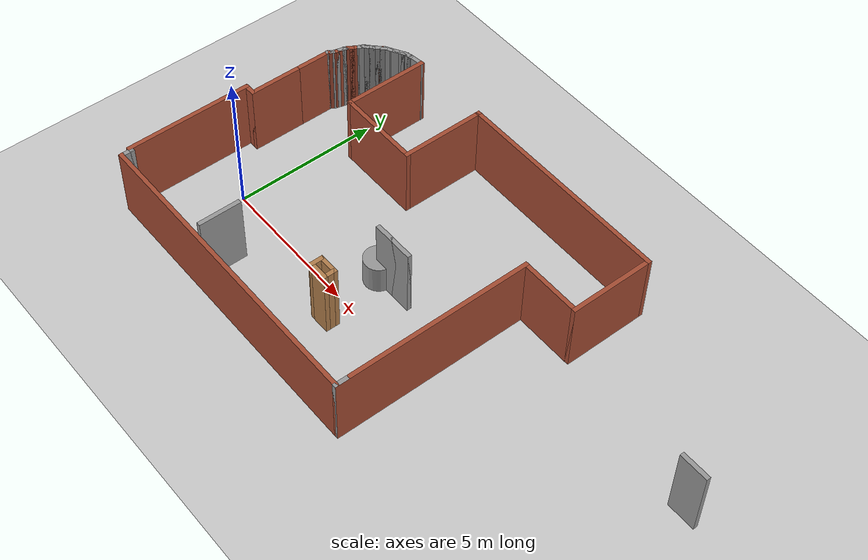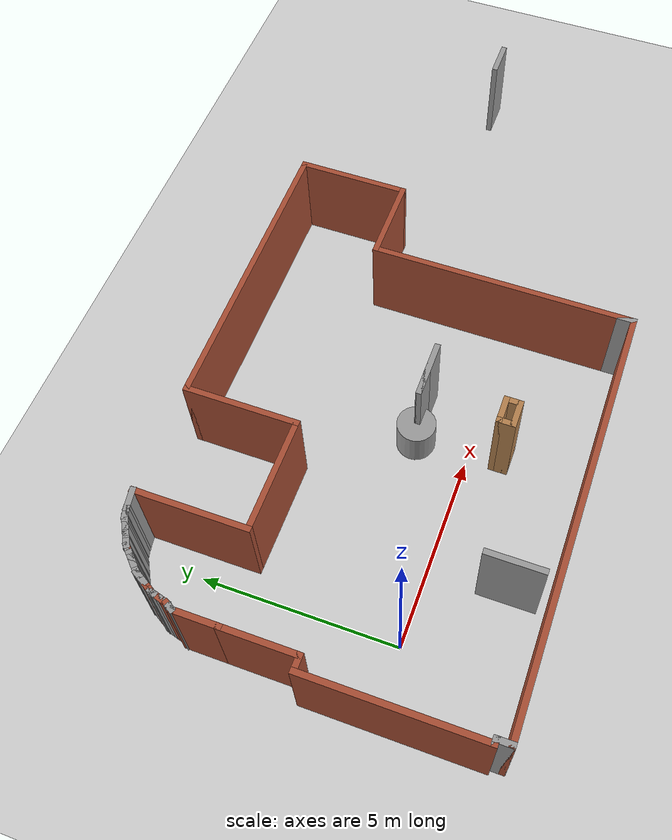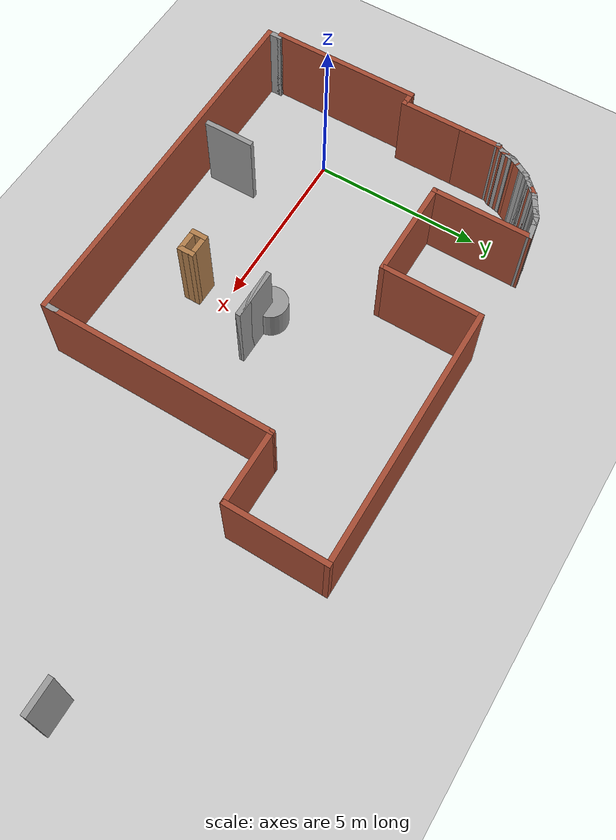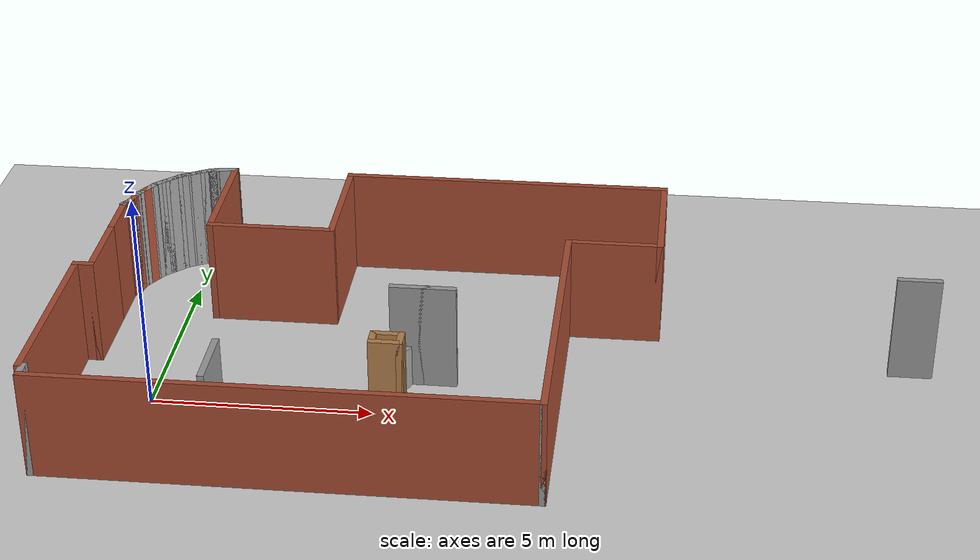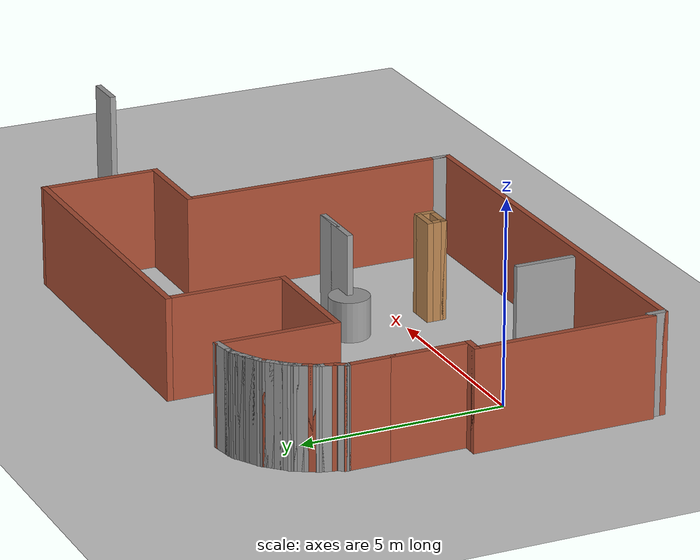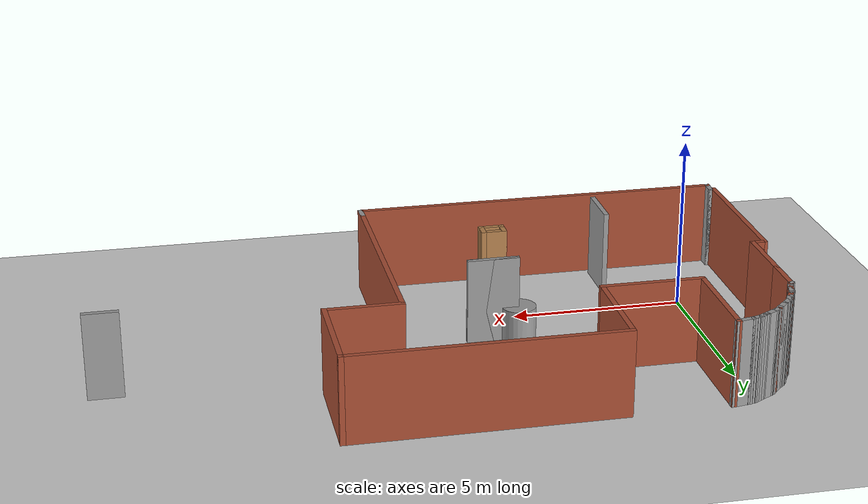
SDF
<sdf version="1.7">
 <world name="default">
  <light name="sun" type="directional">
   <pose>0 0 10 0 -0 0</pose>
   <diffuse>0.8 0.8 0.8 1</diffuse>
   <specular>0.2 0.2 0.2 1</specular>
   <attenuation>
    <range>1000</range>
    <constant>0.9</constant>
    <linear>0.01</linear>
    <quadratic>0.001</quadratic>
   </attenuation>
   <direction>-0.5 0.1 -0.9</direction>
   <spot><inner_angle>0</inner_angle><outer_angle>0</outer_angle><falloff>0</falloff></spot>
  </light>
  <model name="ground_plane">
   <static>1</static>
   <link name="link">
    <collision name="collision">
     <geometry><plane><normal>0 0 1</normal><size>100 100</size></plane></geometry>
     <surface>
      <contact><collide_bitmask>65535</collide_bitmask></contact>
      <friction><ode><mu>100</mu><mu2>50</mu2></ode></friction>
     </surface>
    </collision>
    <visual name="visual">
     <cast_shadows>0</cast_shadows>
     <geometry><plane><normal>0 0 1</normal><size>100 100</size></plane></geometry>
     <material>
      <script><uri>file://media/materials/scripts/gazebo.material</uri><name>Gazebo/Grey</name></script>
     </material>
    </visual>
   </link>
  </model>
  <gravity>0 0 -9.8</gravity>
  <magnetic_field>6e-06 2.3e-05 -4.2e-05</magnetic_field>
  <atmosphere type="adiabatic"/>
  <physics type="ode">
   <max_step_size>0.001</max_step_size>
   <real_time_factor>1</real_time_factor>
   <real_time_update_rate>1000</real_time_update_rate>
  </physics>
  <scene><ambient>0.4 0.4 0.4 1</ambient><background>0.7 0.7 0.7 1</background><shadows>1</shadows></scene>
  <spherical_coordinates>
   <surface_model>EARTH_WGS84</surface_model>
   <latitude_deg>0</latitude_deg>
   <longitude_deg>0</longitude_deg>
   <elevation>0</elevation>
   <heading_deg>0</heading_deg>
  </spherical_coordinates>
  <model name="mapav5">
   <pose>7.68804 1.83557 0 0 -0 0</pose>
   <link name="Wall_0">
    <collision name="Wall_0_Collision">
     <geometry><box><size>11 0.15 2.5</size></box></geometry>
     <pose>0 0 1.25 0 -0 0</pose>
    </collision>
    <visual name="Wall_0_Visual">
     <pose>0 0 1.25 0 -0 0</pose>
     <geometry><box><size>11 0.15 2.5</size></box></geometry>
     <material>
      <script><uri>file://media/materials/scripts/gazebo.material</uri><name>Gazebo/Bricks</name></script>
      <ambient>1 1 1 1</ambient>
     </material>
     <meta><layer>0</layer></meta>
    </visual>
    <pose>-4.10303 -4.85557 0 0 -0 0</pose>
   </link>
   <link name="Wall_1">
    <collision name="Wall_1_Collision">
     <geometry><box><size>7 0.15 2.5</size></box></geometry>
     <pose>0 0 1.25 0 -0 0</pose>
    </collision>
    <visual name="Wall_1_Visual">
     <pose>0 0 1.25 0 -0 0</pose>
     <geometry><box><size>7 0.15 2.5</size></box></geometry>
     <material>
      <script><uri>file://media/materials/scripts/gazebo.material</uri><name>Gazebo/Bricks</name></script>
      <ambient>1 1 1 1</ambient>
     </material>
     <meta><layer>0</layer></meta>
    </visual>
    <pose>1.32197 -1.43057 0 0 -0 1.5708</pose>
   </link>
   <link name="Wall_10">
    <collision name="Wall_10_Collision">
     <geometry><box><size>0.5 0.15 2.5</size></box></geometry>
     <pose>0 0 1.25 0 -0 0</pose>
    </collision>
    <visual name="Wall_10_Visual">
     <pose>0 0 1.25 0 -0 0</pose>
     <geometry><box><size>0.5 0.15 2.5</size></box></geometry>
     <material>
      <script><uri>file://media/materials/scripts/gazebo.material</uri><name>Gazebo/Grey</name></script>
      <ambient>1 1 1 1</ambient>
     </material>
     <meta><layer>0</layer></meta>
    </visual>
    <pose>-9.52803 -4.68057 0 0 -0 1.5708</pose>
   </link>
   <link name="Wall_13">
    <collision name="Wall_13_Collision">
     <geometry><box><size>0.25 0.15 2.5</size></box></geometry>
     <pose>0 0 1.25 0 -0 0</pose>
    </collision>
    <visual name="Wall_13_Visual">
     <pose>0 0 1.25 0 -0 0</pose>
     <geometry><box><size>0.25 0.15 2.5</size></box></geometry>
     <material>
      <script><uri>file://media/materials/scripts/gazebo.material</uri><name>Gazebo/Grey</name></script>
      <ambient>1 1 1 1</ambient>
     </material>
     <meta><layer>0</layer></meta>
    </visual>
    <pose>-9.57803 -4.50557 0 0 -0 3.14159</pose>
   </link>
   <link name="Wall_14">
    <collision name="Wall_14_Collision">
     <geometry><box><size>4.5 0.15 2.5</size></box></geometry>
     <pose>0 0 1.25 0 -0 0</pose>
    </collision>
    <visual name="Wall_14_Visual">
     <pose>0 0 1.25 0 -0 0</pose>
     <geometry><box><size>4.5 0.15 2.5</size></box></geometry>
     <material>
      <script><uri>file://media/materials/scripts/gazebo.material</uri><name>Gazebo/Bricks</name></script>
      <ambient>1 1 1 1</ambient>
     </material>
     <meta><layer>0</layer></meta>
    </visual>
    <pose>-9.62804 -2.33057 0 0 -0 1.5708</pose>
   </link>
   <link name="Wall_15">
    <collision name="Wall_15_Collision">
     <geometry><box><size>0.5 0.15 2.5</size></box></geometry>
     <pose>0 0 1.25 0 -0 0</pose>
    </collision>
    <visual name="Wall_15_Visual">
     <pose>0 0 1.25 0 -0 0</pose>
     <geometry><box><size>0.5 0.15 2.5</size></box></geometry>
     <material>
      <script><uri>file://media/materials/scripts/gazebo.material</uri><name>Gazebo/Bricks</name></script>
      <ambient>1 1 1 1</ambient>
     </material>
     <meta><layer>0</layer></meta>
    </visual>
    <pose>-9.45303 -0.15557 0 0 -0 0</pose>
   </link>
   <link name="Wall_16">
    <collision name="Wall_16_Collision">
     <geometry><box><size>2 0.15 2.5</size></box></geometry>
     <pose>0 0 1.25 0 -0 0</pose>
    </collision>
    <visual name="Wall_16_Visual">
     <pose>0 0 1.25 0 -0 0</pose>
     <geometry><box><size>2 0.15 2.5</size></box></geometry>
     <material>
      <script><uri>file://media/materials/scripts/gazebo.material</uri><name>Gazebo/Bricks</name></script>
      <ambient>1 1 1 1</ambient>
     </material>
     <meta><layer>0</layer></meta>
    </visual>
    <pose>-9.27803 0.769431 0 0 -0 1.5708</pose>
   </link>
   <link name="Wall_2">
    <collision name="Wall_2_Collision">
     <geometry><box><size>2.25 0.15 2.5</size></box></geometry>
     <pose>0 0 1.25 0 -0 0</pose>
    </collision>
    <visual name="Wall_2_Visual">
     <pose>0 0 1.25 0 -0 0</pose>
     <geometry><box><size>2.25 0.15 2.5</size></box></geometry>
     <material>
      <script><uri>file://media/materials/scripts/gazebo.material</uri><name>Gazebo/Bricks</name></script>
      <ambient>1 1 1 1</ambient>
     </material>
     <meta><layer>0</layer></meta>
    </visual>
    <pose>2.37197 1.99443 0 0 -0 0</pose>
   </link>
   <link name="Wall_24">
    <collision name="Wall_24_Collision">
     <geometry><box><size>1.25 0.15 2.5</size></box></geometry>
     <pose>0 0 1.25 0 -0 0</pose>
    </collision>
    <visual name="Wall_24_Visual">
     <pose>0 0 1.25 0 -0 0</pose>
     <geometry><box><size>1.25 0.15 2.5</size></box></geometry>
     <material>
      <script><uri>file://media/materials/scripts/gazebo.material</uri><name>Gazebo/Bricks</name></script>
      <ambient>1 1 1 1</ambient>
     </material>
     <meta><layer>0</layer></meta>
    </visual>
    <pose>-9.27803 2.24443 0 0 -0 1.5708</pose>
   </link>
   <link name="Wall_25">
    <collision name="Wall_25_Collision">
     <geometry><box><size>0.15 0.15 2.5</size></box></geometry>
     <pose>0 0 1.25 0 -0 0</pose>
    </collision>
    <visual name="Wall_25_Visual">
     <pose>0 0 1.25 0 -0 0</pose>
     <geometry><box><size>0.15 0.15 2.5</size></box></geometry>
     <material>
      <script><uri>file://media/materials/scripts/gazebo.material</uri><name>Gazebo/Grey</name></script>
      <ambient>1 1 1 1</ambient>
     </material>
     <meta><layer>0</layer></meta>
    </visual>
    <pose>-9.27803 2.79443 0 0 -0 0</pose>
   </link>
   <link name="Wall_26">
    <collision name="Wall_26_Collision">
     <geometry><box><size>0.25 0.15 2.5</size></box></geometry>
     <pose>0 0 1.25 0 -0 0</pose>
    </collision>
    <visual name="Wall_26_Visual">
     <pose>0 0 1.25 0 -0 0</pose>
     <geometry><box><size>0.25 0.15 2.5</size></box></geometry>
     <material>
      <script><uri>file://media/materials/scripts/gazebo.material</uri><name>Gazebo/Grey</name></script>
      <ambient>1 1 1 1</ambient>
     </material>
     <meta><layer>0</layer></meta>
    </visual>
    <pose>-9.25304 2.83773 0 0 -0 1.0472</pose>
   </link>
   <link name="Wall_27">
    <collision name="Wall_27_Collision">
     <geometry><box><size>0.25 0.15 2.5</size></box></geometry>
     <pose>0 0 1.25 0 -0 0</pose>
    </collision>
    <visual name="Wall_27_Visual">
     <pose>0 0 1.25 0 -0 0</pose>
     <geometry><box><size>0.25 0.15 2.5</size></box></geometry>
     <material>
      <script><uri>file://media/materials/scripts/gazebo.material</uri><name>Gazebo/Bricks</name></script>
      <ambient>1 1 1 1</ambient>
     </material>
     <meta><layer>0</layer></meta>
    </visual>
    <pose>-9.20303 2.92433 0 0 -0 1.0472</pose>
   </link>
   <link name="Wall_28">
    <collision name="Wall_28_Collision">
     <geometry><box><size>0.25 0.15 2.5</size></box></geometry>
     <pose>0 0 1.25 0 -0 0</pose>
    </collision>
    <visual name="Wall_28_Visual">
     <pose>0 0 1.25 0 -0 0</pose>
     <geometry><box><size>0.25 0.15 2.5</size></box></geometry>
     <material>
      <script><uri>file://media/materials/scripts/gazebo.material</uri><name>Gazebo/Grey</name></script>
      <ambient>1 1 1 1</ambient>
     </material>
     <meta><layer>0</layer></meta>
    </visual>
    <pose>-9.16509 3.01593 0 0 -0 1.309</pose>
   </link>
   <link name="Wall_29">
    <collision name="Wall_29_Collision">
     <geometry><box><size>0.25 0.15 2.5</size></box></geometry>
     <pose>0 0 1.25 0 -0 0</pose>
    </collision>
    <visual name="Wall_29_Visual">
     <pose>0 0 1.25 0 -0 0</pose>
     <geometry><box><size>0.25 0.15 2.5</size></box></geometry>
     <material>
      <script><uri>file://media/materials/scripts/gazebo.material</uri><name>Gazebo/Bricks</name></script>
      <ambient>1 1 1 1</ambient>
     </material>
     <meta><layer>0</layer></meta>
    </visual>
    <pose>-9.13921 3.11252 0 0 -0 1.309</pose>
   </link>
   <link name="Wall_3">
    <collision name="Wall_3_Collision">
     <geometry><box><size>3 0.15 2.5</size></box></geometry>
     <pose>0 0 1.25 0 -0 0</pose>
    </collision>
    <visual name="Wall_3_Visual">
     <pose>0 0 1.25 0 -0 0</pose>
     <geometry><box><size>3 0.15 2.5</size></box></geometry>
     <material>
      <script><uri>file://media/materials/scripts/gazebo.material</uri><name>Gazebo/Bricks</name></script>
      <ambient>1 1 1 1</ambient>
     </material>
     <meta><layer>0</layer></meta>
    </visual>
    <pose>3.42197 3.41943 0 0 -0 1.5708</pose>
   </link>
   <link name="Wall_30">
    <collision name="Wall_30_Collision">
     <geometry><box><size>0.25 0.15 2.5</size></box></geometry>
     <pose>0 0 1.25 0 -0 0</pose>
    </collision>
    <visual name="Wall_30_Visual">
     <pose>0 0 1.25 0 -0 0</pose>
     <geometry><box><size>0.25 0.15 2.5</size></box></geometry>
     <material>
      <script><uri>file://media/materials/scripts/gazebo.material</uri><name>Gazebo/Grey</name></script>
      <ambient>1 1 1 1</ambient>
     </material>
     <meta><layer>0</layer></meta>
    </visual>
    <pose>-9.11333 3.20912 0 0 -0 1.309</pose>
   </link>
   <link name="Wall_31">
    <collision name="Wall_31_Collision">
     <geometry><box><size>0.25 0.15 2.5</size></box></geometry>
     <pose>0 0 1.25 0 -0 0</pose>
    </collision>
    <visual name="Wall_31_Visual">
     <pose>0 0 1.25 0 -0 0</pose>
     <geometry><box><size>0.25 0.15 2.5</size></box></geometry>
     <material>
      <script><uri>file://media/materials/scripts/gazebo.material</uri><name>Gazebo/Grey</name></script>
      <ambient>1 1 1 1</ambient>
     </material>
     <meta><layer>0</layer></meta>
    </visual>
    <pose>-9.08745 3.30571 0 0 -0 1.309</pose>
   </link>
   <link name="Wall_32">
    <collision name="Wall_32_Collision">
     <geometry><box><size>0.25 0.15 2.5</size></box></geometry>
     <pose>0 0 1.25 0 -0 0</pose>
    </collision>
    <visual name="Wall_32_Visual">
     <pose>0 0 1.25 0 -0 0</pose>
     <geometry><box><size>0.25 0.15 2.5</size></box></geometry>
     <material>
      <script><uri>file://media/materials/scripts/gazebo.material</uri><name>Gazebo/Grey</name></script>
      <ambient>1 1 1 1</ambient>
     </material>
     <meta><layer>0</layer></meta>
    </visual>
    <pose>-9.04951 3.39731 0 0 -0 1.0472</pose>
   </link>
   <link name="Wall_33">
    <collision name="Wall_33_Collision">
     <geometry><box><size>0.25 0.15 2.5</size></box></geometry>
     <pose>0 0 1.25 0 -0 0</pose>
    </collision>
    <visual name="Wall_33_Visual">
     <pose>0 0 1.25 0 -0 0</pose>
     <geometry><box><size>0.25 0.15 2.5</size></box></geometry>
     <material>
      <script><uri>file://media/materials/scripts/gazebo.material</uri><name>Gazebo/Bricks</name></script>
      <ambient>1 1 1 1</ambient>
     </material>
     <meta><layer>0</layer></meta>
    </visual>
    <pose>-8.99951 3.48391 0 0 -0 1.0472</pose>
   </link>
   <link name="Wall_34">
    <collision name="Wall_34_Collision">
     <geometry><box><size>0.25 0.15 2.5</size></box></geometry>
     <pose>0 0 1.25 0 -0 0</pose>
    </collision>
    <visual name="Wall_34_Visual">
     <pose>0 0 1.25 0 -0 0</pose>
     <geometry><box><size>0.25 0.15 2.5</size></box></geometry>
     <material>
      <script><uri>file://media/materials/scripts/gazebo.material</uri><name>Gazebo/Bricks</name></script>
      <ambient>1 1 1 1</ambient>
     </material>
     <meta><layer>0</layer></meta>
    </visual>
    <pose>-8.94951 3.57051 0 0 -0 1.0472</pose>
   </link>
   <link name="Wall_35">
    <collision name="Wall_35_Collision">
     <geometry><box><size>0.25 0.15 2.5</size></box></geometry>
     <pose>0 0 1.25 0 -0 0</pose>
    </collision>
    <visual name="Wall_35_Visual">
     <pose>0 0 1.25 0 -0 0</pose>
     <geometry><box><size>0.25 0.15 2.5</size></box></geometry>
     <material>
      <script><uri>file://media/materials/scripts/gazebo.material</uri><name>Gazebo/Grey</name></script>
      <ambient>1 1 1 1</ambient>
     </material>
     <meta><layer>0</layer></meta>
    </visual>
    <pose>-8.89951 3.65712 0 0 -0 1.0472</pose>
   </link>
   <link name="Wall_36">
    <collision name="Wall_36_Collision">
     <geometry><box><size>0.25 0.15 2.5</size></box></geometry>
     <pose>0 0 1.25 0 -0 0</pose>
    </collision>
    <visual name="Wall_36_Visual">
     <pose>0 0 1.25 0 -0 0</pose>
     <geometry><box><size>0.25 0.15 2.5</size></box></geometry>
     <material>
      <script><uri>file://media/materials/scripts/gazebo.material</uri><name>Gazebo/Grey</name></script>
      <ambient>1 1 1 1</ambient>
     </material>
     <meta><layer>0</layer></meta>
    </visual>
    <pose>-8.84951 3.74372 0 0 -0 1.0472</pose>
   </link>
   <link name="Wall_37">
    <collision name="Wall_37_Collision">
     <geometry><box><size>0.25 0.15 2.5</size></box></geometry>
     <pose>0 0 1.25 0 -0 0</pose>
    </collision>
    <visual name="Wall_37_Visual">
     <pose>0 0 1.25 0 -0 0</pose>
     <geometry><box><size>0.25 0.15 2.5</size></box></geometry>
     <material>
      <script><uri>file://media/materials/scripts/gazebo.material</uri><name>Gazebo/Grey</name></script>
      <ambient>1 1 1 1</ambient>
     </material>
     <meta><layer>0</layer></meta>
    </visual>
    <pose>-8.79951 3.83032 0 0 -0 1.0472</pose>
   </link>
   <link name="Wall_38">
    <collision name="Wall_38_Collision">
     <geometry><box><size>0.25 0.15 2.5</size></box></geometry>
     <pose>0 0 1.25 0 -0 0</pose>
    </collision>
    <visual name="Wall_38_Visual">
     <pose>0 0 1.25 0 -0 0</pose>
     <geometry><box><size>0.25 0.15 2.5</size></box></geometry>
     <material>
      <script><uri>file://media/materials/scripts/gazebo.material</uri><name>Gazebo/Grey</name></script>
      <ambient>1 1 1 1</ambient>
     </material>
     <meta><layer>0</layer></meta>
    </visual>
    <pose>-8.73915 3.90898 0 0 -0 0.785398</pose>
   </link>
   <link name="Wall_39">
    <collision name="Wall_39_Collision">
     <geometry><box><size>0.25 0.15 2.5</size></box></geometry>
     <pose>0 0 1.25 0 -0 0</pose>
    </collision>
    <visual name="Wall_39_Visual">
     <pose>0 0 1.25 0 -0 0</pose>
     <geometry><box><size>0.25 0.15 2.5</size></box></geometry>
     <material>
      <script><uri>file://media/materials/scripts/gazebo.material</uri><name>Gazebo/Grey</name></script>
      <ambient>1 1 1 1</ambient>
     </material>
     <meta><layer>0</layer></meta>
    </visual>
    <pose>-8.66844 3.97969 0 0 -0 0.785398</pose>
   </link>
   <link name="Wall_4">
    <collision name="Wall_4_Collision">
     <geometry><box><size>7.75 0.15 2.5</size></box></geometry>
     <pose>0 0 1.25 0 -0 0</pose>
    </collision>
    <visual name="Wall_4_Visual">
     <pose>0 0 1.25 0 -0 0</pose>
     <geometry><box><size>7.75 0.15 2.5</size></box></geometry>
     <material>
      <script><uri>file://media/materials/scripts/gazebo.material</uri><name>Gazebo/Bricks</name></script>
      <ambient>1 1 1 1</ambient>
     </material>
     <meta><layer>0</layer></meta>
    </visual>
    <pose>-0.378035 4.84443 0 0 -0 3.14159</pose>
   </link>
   <link name="Wall_40">
    <collision name="Wall_40_Collision">
     <geometry><box><size>0.25 0.15 2.5</size></box></geometry>
     <pose>0 0 1.25 0 -0 0</pose>
    </collision>
    <visual name="Wall_40_Visual">
     <pose>0 0 1.25 0 -0 0</pose>
     <geometry><box><size>0.25 0.15 2.5</size></box></geometry>
     <material>
      <script><uri>file://media/materials/scripts/gazebo.material</uri><name>Gazebo/Grey</name></script>
      <ambient>1 1 1 1</ambient>
     </material>
     <meta><layer>0</layer></meta>
    </visual>
    <pose>-8.59773 4.0504 0 0 -0 0.785398</pose>
   </link>
   <link name="Wall_41">
    <collision name="Wall_41_Collision">
     <geometry><box><size>0.25 0.15 2.5</size></box></geometry>
     <pose>0 0 1.25 0 -0 0</pose>
    </collision>
    <visual name="Wall_41_Visual">
     <pose>0 0 1.25 0 -0 0</pose>
     <geometry><box><size>0.25 0.15 2.5</size></box></geometry>
     <material>
      <script><uri>file://media/materials/scripts/gazebo.material</uri><name>Gazebo/Grey</name></script>
      <ambient>1 1 1 1</ambient>
     </material>
     <meta><layer>0</layer></meta>
    </visual>
    <pose>-8.52702 4.12111 0 0 -0 0.785398</pose>
   </link>
   <link name="Wall_42">
    <collision name="Wall_42_Collision">
     <geometry><box><size>0.25 0.15 2.5</size></box></geometry>
     <pose>0 0 1.25 0 -0 0</pose>
    </collision>
    <visual name="Wall_42_Visual">
     <pose>0 0 1.25 0 -0 0</pose>
     <geometry><box><size>0.25 0.15 2.5</size></box></geometry>
     <material>
      <script><uri>file://media/materials/scripts/gazebo.material</uri><name>Gazebo/Grey</name></script>
      <ambient>1 1 1 1</ambient>
     </material>
     <meta><layer>0</layer></meta>
    </visual>
    <pose>-8.45631 4.19182 0 0 -0 0.785398</pose>
   </link>
   <link name="Wall_43">
    <collision name="Wall_43_Collision">
     <geometry><box><size>0.25 0.15 2.5</size></box></geometry>
     <pose>0 0 1.25 0 -0 0</pose>
    </collision>
    <visual name="Wall_43_Visual">
     <pose>0 0 1.25 0 -0 0</pose>
     <geometry><box><size>0.25 0.15 2.5</size></box></geometry>
     <material>
      <script><uri>file://media/materials/scripts/gazebo.material</uri><name>Gazebo/Bricks</name></script>
      <ambient>1 1 1 1</ambient>
     </material>
     <meta><layer>0</layer></meta>
    </visual>
    <pose>-8.3856 4.26253 0 0 -0 0.785398</pose>
   </link>
   <link name="Wall_44">
    <collision name="Wall_44_Collision">
     <geometry><box><size>0.25 0.15 2.5</size></box></geometry>
     <pose>0 0 1.25 0 -0 0</pose>
    </collision>
    <visual name="Wall_44_Visual">
     <pose>0 0 1.25 0 -0 0</pose>
     <geometry><box><size>0.25 0.15 2.5</size></box></geometry>
     <material>
      <script><uri>file://media/materials/scripts/gazebo.material</uri><name>Gazebo/Grey</name></script>
      <ambient>1 1 1 1</ambient>
     </material>
     <meta><layer>0</layer></meta>
    </visual>
    <pose>-8.31489 4.33324 0 0 -0 0.785398</pose>
   </link>
   <link name="Wall_45">
    <collision name="Wall_45_Collision">
     <geometry><box><size>0.25 0.15 2.5</size></box></geometry>
     <pose>0 0 1.25 0 -0 0</pose>
    </collision>
    <visual name="Wall_45_Visual">
     <pose>0 0 1.25 0 -0 0</pose>
     <geometry><box><size>0.25 0.15 2.5</size></box></geometry>
     <material>
      <script><uri>file://media/materials/scripts/gazebo.material</uri><name>Gazebo/Grey</name></script>
      <ambient>1 1 1 1</ambient>
     </material>
     <meta><layer>0</layer></meta>
    </visual>
    <pose>-8.23623 4.3936 0 0 -0 0.523599</pose>
   </link>
   <link name="Wall_46">
    <collision name="Wall_46_Collision">
     <geometry><box><size>0.25 0.15 2.5</size></box></geometry>
     <pose>0 0 1.25 0 -0 0</pose>
    </collision>
    <visual name="Wall_46_Visual">
     <pose>0 0 1.25 0 -0 0</pose>
     <geometry><box><size>0.25 0.15 2.5</size></box></geometry>
     <material>
      <script><uri>file://media/materials/scripts/gazebo.material</uri><name>Gazebo/Grey</name></script>
      <ambient>1 1 1 1</ambient>
     </material>
     <meta><layer>0</layer></meta>
    </visual>
    <pose>-8.14963 4.4436 0 0 -0 0.523599</pose>
   </link>
   <link name="Wall_47">
    <collision name="Wall_47_Collision">
     <geometry><box><size>0.25 0.15 2.5</size></box></geometry>
     <pose>0 0 1.25 0 -0 0</pose>
    </collision>
    <visual name="Wall_47_Visual">
     <pose>0 0 1.25 0 -0 0</pose>
     <geometry><box><size>0.25 0.15 2.5</size></box></geometry>
     <material>
      <script><uri>file://media/materials/scripts/gazebo.material</uri><name>Gazebo/Grey</name></script>
      <ambient>1 1 1 1</ambient>
     </material>
     <meta><layer>0</layer></meta>
    </visual>
    <pose>-8.06303 4.4936 0 0 -0 0.523599</pose>
   </link>
   <link name="Wall_48">
    <collision name="Wall_48_Collision">
     <geometry><box><size>0.25 0.15 2.5</size></box></geometry>
     <pose>0 0 1.25 0 -0 0</pose>
    </collision>
    <visual name="Wall_48_Visual">
     <pose>0 0 1.25 0 -0 0</pose>
     <geometry><box><size>0.25 0.15 2.5</size></box></geometry>
     <material>
      <script><uri>file://media/materials/scripts/gazebo.material</uri><name>Gazebo/Grey</name></script>
      <ambient>1 1 1 1</ambient>
     </material>
     <meta><layer>0</layer></meta>
    </visual>
    <pose>-7.97642 4.5436 0 0 -0 0.523599</pose>
   </link>
   <link name="Wall_49">
    <collision name="Wall_49_Collision">
     <geometry><box><size>0.25 0.15 2.5</size></box></geometry>
     <pose>0 0 1.25 0 -0 0</pose>
    </collision>
    <visual name="Wall_49_Visual">
     <pose>0 0 1.25 0 -0 0</pose>
     <geometry><box><size>0.25 0.15 2.5</size></box></geometry>
     <material>
      <script><uri>file://media/materials/scripts/gazebo.material</uri><name>Gazebo/Grey</name></script>
      <ambient>1 1 1 1</ambient>
     </material>
     <meta><layer>0</layer></meta>
    </visual>
    <pose>-7.88982 4.5936 0 0 -0 0.523599</pose>
   </link>
   <link name="Wall_5">
    <collision name="Wall_5_Collision">
     <geometry><box><size>3 0.15 2.5</size></box></geometry>
     <pose>0 0 1.25 0 -0 0</pose>
    </collision>
    <visual name="Wall_5_Visual">
     <pose>0 0 1.25 0 -0 0</pose>
     <geometry><box><size>3 0.15 2.5</size></box></geometry>
     <material>
      <script><uri>file://media/materials/scripts/gazebo.material</uri><name>Gazebo/Bricks</name></script>
      <ambient>1 1 1 1</ambient>
     </material>
     <meta><layer>0</layer></meta>
    </visual>
    <pose>-4.17804 3.41943 0 0 -0 -1.5708</pose>
   </link>
   <link name="Wall_50">
    <collision name="Wall_50_Collision">
     <geometry><box><size>0.25 0.15 2.5</size></box></geometry>
     <pose>0 0 1.25 0 -0 0</pose>
    </collision>
    <visual name="Wall_50_Visual">
     <pose>0 0 1.25 0 -0 0</pose>
     <geometry><box><size>0.25 0.15 2.5</size></box></geometry>
     <material>
      <script><uri>file://media/materials/scripts/gazebo.material</uri><name>Gazebo/Grey</name></script>
      <ambient>1 1 1 1</ambient>
     </material>
     <meta><layer>0</layer></meta>
    </visual>
    <pose>-7.80322 4.6436 0 0 -0 0.523599</pose>
   </link>
   <link name="Wall_51">
    <collision name="Wall_51_Collision">
     <geometry><box><size>0.25 0.15 2.5</size></box></geometry>
     <pose>0 0 1.25 0 -0 0</pose>
    </collision>
    <visual name="Wall_51_Visual">
     <pose>0 0 1.25 0 -0 0</pose>
     <geometry><box><size>0.25 0.15 2.5</size></box></geometry>
     <material>
      <script><uri>file://media/materials/scripts/gazebo.material</uri><name>Gazebo/Grey</name></script>
      <ambient>1 1 1 1</ambient>
     </material>
     <meta><layer>0</layer></meta>
    </visual>
    <pose>-7.71662 4.6936 0 0 -0 0.523599</pose>
   </link>
   <link name="Wall_52">
    <collision name="Wall_52_Collision">
     <geometry><box><size>0.25 0.15 2.5</size></box></geometry>
     <pose>0 0 1.25 0 -0 0</pose>
    </collision>
    <visual name="Wall_52_Visual">
     <pose>0 0 1.25 0 -0 0</pose>
     <geometry><box><size>0.25 0.15 2.5</size></box></geometry>
     <material>
      <script><uri>file://media/materials/scripts/gazebo.material</uri><name>Gazebo/Grey</name></script>
      <ambient>1 1 1 1</ambient>
     </material>
     <meta><layer>0</layer></meta>
    </visual>
    <pose>-7.62502 4.73154 0 0 -0 0.261799</pose>
   </link>
   <link name="Wall_53">
    <collision name="Wall_53_Collision">
     <geometry><box><size>0.25 0.15 2.5</size></box></geometry>
     <pose>0 0 1.25 0 -0 0</pose>
    </collision>
    <visual name="Wall_53_Visual">
     <pose>0 0 1.25 0 -0 0</pose>
     <geometry><box><size>0.25 0.15 2.5</size></box></geometry>
     <material>
      <script><uri>file://media/materials/scripts/gazebo.material</uri><name>Gazebo/Grey</name></script>
      <ambient>1 1 1 1</ambient>
     </material>
     <meta><layer>0</layer></meta>
    </visual>
    <pose>-7.52843 4.75742 0 0 -0 0.261799</pose>
   </link>
   <link name="Wall_54">
    <collision name="Wall_54_Collision">
     <geometry><box><size>0.25 0.15 2.5</size></box></geometry>
     <pose>0 0 1.25 0 -0 0</pose>
    </collision>
    <visual name="Wall_54_Visual">
     <pose>0 0 1.25 0 -0 0</pose>
     <geometry><box><size>0.25 0.15 2.5</size></box></geometry>
     <material>
      <script><uri>file://media/materials/scripts/gazebo.material</uri><name>Gazebo/Grey</name></script>
      <ambient>1 1 1 1</ambient>
     </material>
     <meta><layer>0</layer></meta>
    </visual>
    <pose>-7.52843 4.75742 0 0 -0 -2.87979</pose>
   </link>
   <link name="Wall_55">
    <collision name="Wall_55_Collision">
     <geometry><box><size>0.25 0.15 2.5</size></box></geometry>
     <pose>0 0 1.25 0 -0 0</pose>
    </collision>
    <visual name="Wall_55_Visual">
     <pose>0 0 1.25 0 -0 0</pose>
     <geometry><box><size>0.25 0.15 2.5</size></box></geometry>
     <material>
      <script><uri>file://media/materials/scripts/gazebo.material</uri><name>Gazebo/Grey</name></script>
      <ambient>1 1 1 1</ambient>
     </material>
     <meta><layer>0</layer></meta>
    </visual>
    <pose>-7.52843 4.75742 0 0 -0 0.261799</pose>
   </link>
   <link name="Wall_57">
    <collision name="Wall_57_Collision">
     <geometry><box><size>0.25 0.15 2.5</size></box></geometry>
     <pose>0 0 1.25 0 -0 0</pose>
    </collision>
    <visual name="Wall_57_Visual">
     <pose>0 0 1.25 0 -0 0</pose>
     <geometry><box><size>0.25 0.15 2.5</size></box></geometry>
     <material>
      <script><uri>file://media/materials/scripts/gazebo.material</uri><name>Gazebo/Grey</name></script>
      <ambient>1 1 1 1</ambient>
     </material>
     <meta><layer>0</layer></meta>
    </visual>
    <pose>-7.52843 4.75742 0 0 -0 0.261799</pose>
   </link>
   <link name="Wall_58">
    <collision name="Wall_58_Collision">
     <geometry><box><size>0.15 0.15 2.5</size></box></geometry>
     <pose>0 0 1.25 0 -0 0</pose>
    </collision>
    <visual name="Wall_58_Visual">
     <pose>0 0 1.25 0 -0 0</pose>
     <geometry><box><size>0.15 0.15 2.5</size></box></geometry>
     <material>
      <script><uri>file://media/materials/scripts/gazebo.material</uri><name>Gazebo/Grey</name></script>
      <ambient>1 1 1 1</ambient>
     </material>
     <meta><layer>0</layer></meta>
    </visual>
    <pose>-7.48013 4.77036 0 0 -0 0</pose>
   </link>
   <link name="Wall_59">
    <collision name="Wall_59_Collision">
     <geometry><box><size>0.608122 0.15 2.5</size></box></geometry>
     <pose>0 0 1.25 0 -0 0</pose>
    </collision>
    <visual name="Wall_59_Visual">
     <pose>0 0 1.25 0 -0 0</pose>
     <geometry><box><size>0.608122 0.15 2.5</size></box></geometry>
     <material>
      <script><uri>file://media/materials/scripts/gazebo.material</uri><name>Gazebo/Grey</name></script>
      <ambient>1 1 1 1</ambient>
     </material>
     <meta><layer>0</layer></meta>
    </visual>
    <pose>-7.25408 4.80739 0 0 -0 0.162396</pose>
   </link>
   <link name="Wall_6">
    <collision name="Wall_6_Collision">
     <geometry><box><size>3 0.15 2.5</size></box></geometry>
     <pose>0 0 1.25 0 -0 0</pose>
    </collision>
    <visual name="Wall_6_Visual">
     <pose>0 0 1.25 0 -0 0</pose>
     <geometry><box><size>3 0.15 2.5</size></box></geometry>
     <material>
      <script><uri>file://media/materials/scripts/gazebo.material</uri><name>Gazebo/Bricks</name></script>
      <ambient>1 1 1 1</ambient>
     </material>
     <meta><layer>0</layer></meta>
    </visual>
    <pose>-5.60303 1.99443 0 0 -0 3.14159</pose>
   </link>
   <link name="Wall_64">
    <collision name="Wall_64_Collision">
     <geometry><box><size>0.5 0.15 2.5</size></box></geometry>
     <pose>0 0 1.25 0 -0 0</pose>
    </collision>
    <visual name="Wall_64_Visual">
     <pose>0 0 1.25 0 -0 0</pose>
     <geometry><box><size>0.5 0.15 2.5</size></box></geometry>
     <material>
      <script><uri>file://media/materials/scripts/gazebo.material</uri><name>Gazebo/Grey</name></script>
      <ambient>1 1 1 1</ambient>
     </material>
     <meta><layer>0</layer></meta>
    </visual>
    <pose>1.32197 -4.68057 0 0 -0 1.5708</pose>
   </link>
   <link name="Wall_69">
    <collision name="Wall_69_Collision">
     <geometry><box><size>1.5 0.15 2.5</size></box></geometry>
     <pose>0 0 1.25 0 -0 0</pose>
    </collision>
    <visual name="Wall_69_Visual">
     <pose>0 0 1.25 0 -0 0</pose>
     <geometry><box><size>1.5 0.15 2.5</size></box></geometry>
     <material>
      <script><uri>file://media/materials/scripts/gazebo.material</uri><name>Gazebo/Grey</name></script>
      <ambient>1 1 1 1</ambient>
     </material>
     <meta><layer>0</layer></meta>
    </visual>
    <pose>-5.77804 -3.83057 0 0 -0 1.5708</pose>
   </link>
   <link name="Wall_73">
    <collision name="Wall_73_Collision">
     <geometry><box><size>1 0.15 2.5</size></box></geometry>
     <pose>0 0 1.25 0 -0 0</pose>
    </collision>
    <visual name="Wall_73_Visual">
     <pose>0 0 1.25 0 -0 0</pose>
     <geometry><box><size>1 0.15 2.5</size></box></geometry>
     <material>
      <script><uri>file://media/materials/scripts/gazebo.material</uri><name>Gazebo/Grey</name></script>
      <ambient>1 1 1 1</ambient>
     </material>
     <meta><layer>0</layer></meta>
    </visual>
    <pose>9.20303 0.976235 0 0 -0 0</pose>
   </link>
   <link name="Wall_76">
    <collision name="Wall_76_Collision">
     <geometry><box><size>1.5 0.15 2.5</size></box></geometry>
     <pose>0 0 1.25 0 -0 0</pose>
    </collision>
    <visual name="Wall_76_Visual">
     <pose>0 0 1.25 0 -0 0</pose>
     <geometry><box><size>1.5 0.15 2.5</size></box></geometry>
     <material>
      <script><uri>file://media/materials/scripts/gazebo.material</uri><name>Gazebo/Grey</name></script>
      <ambient>1 1 1 1</ambient>
     </material>
     <meta><layer>0</layer></meta>
    </visual>
    <pose>-1.72119 -0.457164 0 0 -0 3.14159</pose>
   </link>
   <link name="Wall_78">
    <collision name="Wall_78_Collision">
     <geometry><box><size>1.5 0.15 2.5</size></box></geometry>
     <pose>0 0 1.25 0 -0 0</pose>
    </collision>
    <visual name="Wall_78_Visual">
     <pose>0 0 1.25 0 -0 0</pose>
     <geometry><box><size>1.5 0.15 2.5</size></box></geometry>
     <material>
      <script><uri>file://media/materials/scripts/gazebo.material</uri><name>Gazebo/Grey</name></script>
      <ambient>1 1 1 1</ambient>
     </material>
     <meta><layer>0</layer></meta>
    </visual>
    <pose>-1.72119 -0.457164 0 0 -0 0</pose>
   </link>
   <link name="Wall_8">
    <collision name="Wall_8_Collision">
     <geometry><box><size>3 0.15 2.5</size></box></geometry>
     <pose>0 0 1.25 0 -0 0</pose>
    </collision>
    <visual name="Wall_8_Visual">
     <pose>0 0 1.25 0 -0 0</pose>
     <geometry><box><size>3 0.15 2.5</size></box></geometry>
     <material>
      <script><uri>file://media/materials/scripts/gazebo.material</uri><name>Gazebo/Bricks</name></script>
      <ambient>1 1 1 1</ambient>
     </material>
     <meta><layer>0</layer></meta>
    </visual>
    <pose>-7.02804 3.41943 0 0 -0 1.5708</pose>
   </link>
   <static>1</static>
  </model>
  <model name="unit_cylinder">
   <pose>5.21685 1.39651 0.499991 -0 -0 -4e-06</pose>
   <link name="link">
    <inertial>
     <mass>1</mass>
     <inertia><ixx>0.145833</ixx><ixy>0</ixy><ixz>0</ixz><iyy>0.145833</iyy><iyz>0</iyz><izz>0.125</izz></inertia>
    </inertial>
    <collision name="collision">
     <geometry><cylinder><radius>0.5</radius><length>1</length></cylinder></geometry>
    </collision>
    <visual name="visual">
     <geometry><cylinder><radius>0.5</radius><length>1</length></cylinder></geometry>
     <material>
      <script><name>Gazebo/Grey</name><uri>file://media/materials/scripts/gazebo.material</uri></script>
     </material>
    </visual>
   </link>
  </model>
  <model name="placa">
   <pose>3.587 1.07101 0 0 -0 0</pose>
   <link name="Wall_82">
    <collision name="Wall_82_Collision">
     <geometry><box><size>0.5 0.15 2.5</size></box></geometry>
     <pose>0 0 1.25 0 -0 0</pose>
    </collision>
    <visual name="Wall_82_Visual">
     <pose>0 0 1.25 0 -0 0</pose>
     <geometry><box><size>0.5 0.15 2.5</size></box></geometry>
     <material>
      <script><uri>file://media/materials/scripts/gazebo.material</uri><name>Gazebo/Wood</name></script>
      <ambient>1 1 1 1</ambient>
     </material>
     <meta><layer>0</layer></meta>
    </visual>
    <pose>1.59506 -1.89714 0 0 -0 -1.5708</pose>
   </link>
   <link name="Wall_83">
    <collision name="Wall_83_Collision">
     <geometry><box><size>0.75 0.15 2.5</size></box></geometry>
     <pose>0 0 1.25 0 -0 0</pose>
    </collision>
    <visual name="Wall_83_Visual">
     <pose>0 0 1.25 0 -0 0</pose>
     <geometry><box><size>0.75 0.15 2.5</size></box></geometry>
     <material>
      <script><uri>file://media/materials/scripts/gazebo.material</uri><name>Gazebo/Wood</name></script>
      <ambient>1 1 1 1</ambient>
     </material>
     <meta><layer>0</layer></meta>
    </visual>
    <pose>1.89506 -2.07214 0 0 -0 0</pose>
   </link>
   <link name="Wall_84">
    <collision name="Wall_84_Collision">
     <geometry><box><size>0.5 0.15 2.5</size></box></geometry>
     <pose>0 0 1.25 0 -0 0</pose>
    </collision>
    <visual name="Wall_84_Visual">
     <pose>0 0 1.25 0 -0 0</pose>
     <geometry><box><size>0.5 0.15 2.5</size></box></geometry>
     <material>
      <script><uri>file://media/materials/scripts/gazebo.material</uri><name>Gazebo/Wood</name></script>
      <ambient>1 1 1 1</ambient>
     </material>
     <meta><layer>0</layer></meta>
    </visual>
    <pose>2.19505 -1.89714 0 0 -0 1.5708</pose>
   </link>
   <link name="Wall_85">
    <collision name="Wall_85_Collision">
     <geometry><box><size>0.75 0.15 2.5</size></box></geometry>
     <pose>0 0 1.25 0 -0 0</pose>
    </collision>
    <visual name="Wall_85_Visual">
     <pose>0 0 1.25 0 -0 0</pose>
     <geometry><box><size>0.75 0.15 2.5</size></box></geometry>
     <material>
      <script><uri>file://media/materials/scripts/gazebo.material</uri><name>Gazebo/Wood</name></script>
      <ambient>1 1 1 1</ambient>
     </material>
     <meta><layer>0</layer></meta>
    </visual>
    <pose>1.89506 -1.72214 0 0 -0 3.14159</pose>
   </link>
   <static>1</static>
  </model>
 </world>
</sdf>
